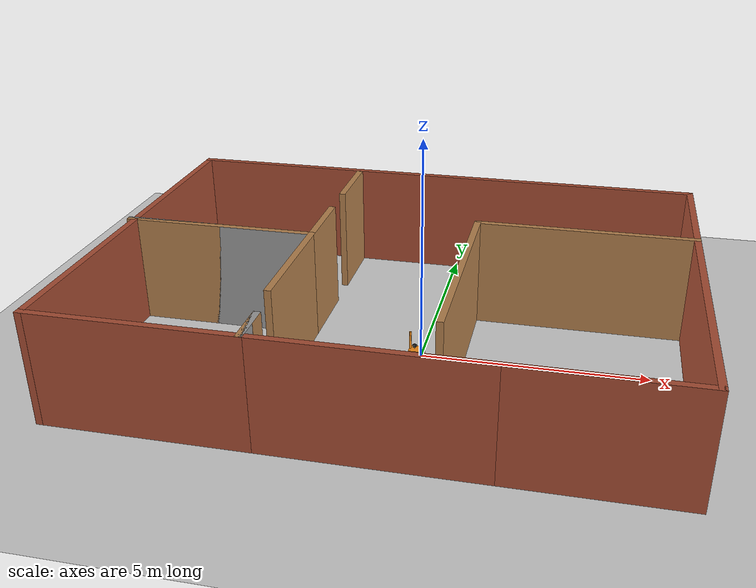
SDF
<sdf version="1.7">
 <world name="default">
  <light name="sun" type="directional">
   <pose>0 0 10 0 -0 0</pose>
   <diffuse>0.8 0.8 0.8 1</diffuse>
   <specular>0.2 0.2 0.2 1</specular>
   <attenuation>
    <range>1000</range>
    <constant>0.9</constant>
    <linear>0.01</linear>
    <quadratic>0.001</quadratic>
   </attenuation>
   <direction>-0.5 0.1 -0.9</direction>
   <spot><inner_angle>0</inner_angle><outer_angle>0</outer_angle><falloff>0</falloff></spot>
  </light>
  <model name="ground_plane">
   <static>1</static>
   <link name="link">
    <collision name="collision">
     <geometry><plane><normal>0 0 1</normal><size>100 100</size></plane></geometry>
     <surface><friction><ode><mu>100</mu><mu2>50</mu2></ode></friction></surface>
    </collision>
    <visual name="visual">
     <cast_shadows>0</cast_shadows>
     <geometry><plane><normal>0 0 1</normal><size>100 100</size></plane></geometry>
     <material>
      <script><uri>file://media/materials/scripts/gazebo.material</uri><name>Gazebo/Grey</name></script>
     </material>
    </visual>
   </link>
  </model>
  <gravity>0 0 -9.8</gravity>
  <magnetic_field>6e-06 2.3e-05 -4.2e-05</magnetic_field>
  <atmosphere type="adiabatic"/>
  <physics type="ode">
   <max_step_size>0.001</max_step_size>
   <real_time_factor>1</real_time_factor>
   <real_time_update_rate>1000</real_time_update_rate>
  </physics>
  <scene><ambient>0.4 0.4 0.4 1</ambient><background>0.7 0.7 0.7 1</background><shadows>1</shadows></scene>
  <spherical_coordinates>
   <surface_model>EARTH_WGS84</surface_model>
   <latitude_deg>0</latitude_deg>
   <longitude_deg>0</longitude_deg>
   <elevation>0</elevation>
   <heading_deg>0</heading_deg>
  </spherical_coordinates>
  <model name="my_bot">
   <link name="base_link">
    <inertial>
     <pose>-0.067475 0 0.081098 0 -0 0</pose>
     <mass>0.61</mass>
     <inertia>
      <ixx>0.00561003</ixx>
      <ixy>0</ixy>
      <ixz>0.000453811</ixz>
      <iyy>0.00760348</iyy>
      <iyz>0</iyz>
      <izz>0.00797093</izz>
     </inertia>
    </inertial>
    <collision name="base_link_fixed_joint_lump__chassis_collision">
     <pose>-0.0585 0 0.059 0 -0 0</pose>
     <geometry><box><size>0.335 0.265 0.138</size></box></geometry>
    </collision>
    <collision name="base_link_fixed_joint_lump__caster_wheel_collision_1">
     <pose>-0.151 0 -0.023 0 -0 0</pose>
     <geometry><sphere><radius>0.01</radius></sphere></geometry>
     <surface><friction><ode><mu>0.001</mu><mu2>0.001</mu2></ode></friction></surface>
    </collision>
    <collision name="base_link_fixed_joint_lump__laser_frame_collision_2">
     <pose>-0.104 0 0.202 0 -0 0</pose>
     <geometry><cylinder><length>0.04</length><radius>0.05</radius></cylinder></geometry>
    </collision>
    <collision name="base_link_fixed_joint_lump__rod_link_collision_3">
     <pose>-0.2 0 0.3 0 -0 0.523599</pose>
     <geometry><cylinder><length>0.5</length><radius>0.02</radius></cylinder></geometry>
    </collision>
    <visual name="base_link_fixed_joint_lump__chassis_visual">
     <pose>-0.0585 0 0.059 0 -0 0</pose>
     <geometry><box><size>0.335 0.265 0.138</size></box></geometry>
     <material>
      <script><name>Gazebo/Orange</name><uri>file://media/materials/scripts/gazebo.material</uri></script>
     </material>
    </visual>
    <visual name="base_link_fixed_joint_lump__camera_link_visual_1">
     <pose>0.05 0 0.171 0 -0 0</pose>
     <geometry><box><size>0.01 0.03 0.03</size></box></geometry>
     <material>
      <script><name>Gazebo/Black</name><uri>file://media/materials/scripts/gazebo.material</uri></script>
     </material>
    </visual>
    <visual name="base_link_fixed_joint_lump__camera_link_visual_2">
     <pose>0.05 0 0.121 0 -0 0</pose>
     <geometry><cylinder><length>0.1</length><radius>0.002</radius></cylinder></geometry>
     <material>
      <script><name>Gazebo/Black</name><uri>file://media/materials/scripts/gazebo.material</uri></script>
     </material>
    </visual>
    <visual name="base_link_fixed_joint_lump__caster_wheel_visual_3">
     <pose>-0.151 0 -0.023 0 -0 0</pose>
     <geometry><sphere><radius>0.01</radius></sphere></geometry>
     <material>
      <script><name>Gazebo/White</name><uri>file://media/materials/scripts/gazebo.material</uri></script>
     </material>
    </visual>
    <visual name="base_link_fixed_joint_lump__laser_frame_visual_4">
     <pose>-0.104 0 0.202 0 -0 0</pose>
     <geometry><cylinder><length>0.04</length><radius>0.05</radius></cylinder></geometry>
     <material>
      <script><name>Gazebo/Black</name><uri>file://media/materials/scripts/gazebo.material</uri></script>
     </material>
    </visual>
    <visual name="base_link_fixed_joint_lump__laser_frame_visual_5">
     <pose>-0.104 0 0.152 0 -0 0</pose>
     <geometry><cylinder><length>0.1</length><radius>0.01</radius></cylinder></geometry>
     <material>
      <script><name>Gazebo/Black</name><uri>file://media/materials/scripts/gazebo.material</uri></script>
     </material>
    </visual>
    <visual name="base_link_fixed_joint_lump__rod_link_visual_6">
     <pose>-0.2 0 0.3 0 -0 0.523599</pose>
     <geometry><cylinder><length>0.5</length><radius>0.02</radius></cylinder></geometry>
     <material>
      <script><name>Gazebo/orange</name><uri>file://media/materials/scripts/gazebo.material</uri></script>
     </material>
    </visual>
    <sensor name="camera" type="camera">
     <visualize>1</visualize>
     <update_rate>10</update_rate>
     <camera>
      <horizontal_fov>1.089</horizontal_fov>
      <image><format>R8G8B8</format><width>640</width><height>480</height></image>
      <clip><near>0.05</near><far>8</far></clip>
     </camera>
     <plugin name="camera_controller" filename="libgazebo_ros_camera.so">
      <frame_name>camera_link_optical</frame_name>
     </plugin>
     <pose>0.05 0 0.171 0 -0 0</pose>
    </sensor>
    <sensor name="laser" type="ray">
     <visualize>0</visualize>
     <update_rate>10</update_rate>
     <ray>
      <scan>
       <horizontal>
        <samples>360</samples>
        <min_angle>-3.14</min_angle>
        <max_angle>3.14</max_angle>
        <resolution>1</resolution>
       </horizontal>
       <vertical><samples>1</samples><min_angle>0</min_angle><max_angle>0</max_angle></vertical>
      </scan>
      <range><min>0.3</min><max>12</max></range>
     </ray>
     <plugin name="laser_controller" filename="libgazebo_ros_ray_sensor.so">
      <ros><argument>~/out:=scan</argument></ros>
      <output_type>sensor_msgs/LaserScan</output_type>
      <frame_name>laser_frame</frame_name>
     </plugin>
     <pose>-0.104 0 0.202 0 -0 0</pose>
    </sensor>
   </link>
   <joint name="left_wheel_joint" type="revolute">
    <pose relative_to="base_link">0 0.1485 0 -1.5708 0 0</pose>
    <parent>base_link</parent>
    <child>left_wheel</child>
    <axis>
     <xyz>0 0 1</xyz>
     <limit><lower>-1e+16</lower><upper>1e+16</upper></limit>
     <dynamics><spring_reference>0</spring_reference><spring_stiffness>0</spring_stiffness></dynamics>
    </axis>
   </joint>
   <link name="left_wheel">
    <pose relative_to="left_wheel_joint">0 0 0 0 -0 0</pose>
    <inertial>
     <mass>0.05</mass>
     <inertia>
      <ixx>1.64292e-05</ixx>
      <ixy>0</ixy>
      <ixz>0</ixz>
      <iyy>1.64292e-05</iyy>
      <iyz>0</iyz>
      <izz>2.7225e-05</izz>
     </inertia>
    </inertial>
    <collision name="left_wheel_collision">
     <geometry><sphere><radius>0.033</radius></sphere></geometry>
    </collision>
    <visual name="left_wheel_visual">
     <geometry><cylinder><length>0.026</length><radius>0.033</radius></cylinder></geometry>
     <material>
      <script><name>Gazebo/Blue</name><uri>file://media/materials/scripts/gazebo.material</uri></script>
     </material>
    </visual>
   </link>
   <joint name="right_wheel_joint" type="revolute">
    <pose relative_to="base_link">0 -0.1485 0 1.5708 -0 0</pose>
    <parent>base_link</parent>
    <child>right_wheel</child>
    <axis>
     <xyz>0 0 -1</xyz>
     <limit><lower>-1e+16</lower><upper>1e+16</upper></limit>
     <dynamics><spring_reference>0</spring_reference><spring_stiffness>0</spring_stiffness></dynamics>
    </axis>
   </joint>
   <link name="right_wheel">
    <pose relative_to="right_wheel_joint">0 0 0 0 -0 0</pose>
    <inertial>
     <mass>0.05</mass>
     <inertia>
      <ixx>1.64292e-05</ixx>
      <ixy>0</ixy>
      <ixz>0</ixz>
      <iyy>1.64292e-05</iyy>
      <iyz>0</iyz>
      <izz>2.7225e-05</izz>
     </inertia>
    </inertial>
    <collision name="right_wheel_collision">
     <geometry><sphere><radius>0.033</radius></sphere></geometry>
    </collision>
    <visual name="right_wheel_visual">
     <geometry><cylinder><length>0.026</length><radius>0.033</radius></cylinder></geometry>
     <material>
      <script><name>Gazebo/Blue</name><uri>file://media/materials/scripts/gazebo.material</uri></script>
     </material>
    </visual>
   </link>
   <plugin name="gazebo_ros2_control" filename="libgazebo_ros2_control.so">
    <parameters>/home/sreeja/dev_ws/install/my_bot/share/my_bot/config/my_controllers.yaml</parameters>
    <parameters>/home/sreeja/dev_ws/install/my_bot/share/my_bot/config/gaz_ros2_ctl_use_sim.yaml</parameters>
   </plugin>
   <frame name="base_footprint_joint" attached_to="base_link"/>
   <frame name="base_footprint" attached_to="base_footprint_joint"/>
   <frame name="camera_optical_joint" attached_to="camera_link"><pose>0 0 0 -1.5708 -0 -1.5708</pose></frame>
   <frame name="camera_link_optical" attached_to="camera_optical_joint"/>
   <frame name="camera_joint" attached_to="chassis"><pose>0.276 0 0.181 0 -0 0</pose></frame>
   <frame name="camera_link" attached_to="camera_joint"/>
   <frame name="caster_wheel_joint" attached_to="chassis"><pose>0.075 0 -0.013 0 -0 0</pose></frame>
   <frame name="caster_wheel" attached_to="caster_wheel_joint"/>
   <frame name="laser_joint" attached_to="chassis"><pose>0.122 0 0.212 0 -0 0</pose></frame>
   <frame name="laser_frame" attached_to="laser_joint"/>
   <frame name="chassis_joint" attached_to="base_link"><pose>-0.226 0 -0.01 0 -0 0</pose></frame>
   <frame name="chassis" attached_to="chassis_joint"/>
   <frame name="rod_joint" attached_to="base_link"><pose>-0.2 0 0.3 0 -0 0.523599</pose></frame>
   <frame name="rod_link" attached_to="rod_joint"/>
   <pose>-0.046398 4.7e-05 0.032997 -1.7e-05 1.8e-05 0.001454</pose>
  </model>
  <model name="Untitled">
   <pose>-0.606753 0.38 0 0 -0 0</pose>
   <link name="Wall_0">
    <collision name="Wall_0_Collision">
     <geometry><box><size>4.75 0.15 2.5</size></box></geometry>
     <pose>0 0 1.25 0 -0 0</pose>
    </collision>
    <visual name="Wall_0_Visual">
     <pose>0 0 1.25 0 -0 0</pose>
     <geometry><box><size>4.75 0.15 2.5</size></box></geometry>
     <material>
      <script><uri>file://media/materials/scripts/gazebo.material</uri><name>Gazebo/Bricks</name></script>
      <ambient>1 1 1 1</ambient>
     </material>
     <meta><layer>0</layer></meta>
    </visual>
    <pose>0.406753 -4.55 0 0 -0 3.14159</pose>
   </link>
   <link name="Wall_1">
    <collision name="Wall_1_Collision">
     <geometry><box><size>1 0.15 2.5</size></box></geometry>
     <pose>0 0 1.25 0 -0 0</pose>
    </collision>
    <visual name="Wall_1_Visual">
     <pose>0 0 1.25 0 -0 0</pose>
     <geometry><box><size>1 0.15 2.5</size></box></geometry>
     <material>
      <script><uri>file://media/materials/scripts/gazebo.material</uri><name>Gazebo/Grey</name></script>
      <ambient>1 1 1 1</ambient>
     </material>
     <meta><layer>0</layer></meta>
    </visual>
    <pose>-1.89325 -4.125 0 0 -0 1.5708</pose>
   </link>
   <link name="Wall_10">
    <collision name="Wall_10_Collision">
     <geometry><box><size>5 0.15 2.5</size></box></geometry>
     <pose>0 0 1.25 0 -0 0</pose>
    </collision>
    <visual name="Wall_10_Visual">
     <pose>0 0 1.25 0 -0 0</pose>
     <geometry><box><size>5 0.15 2.5</size></box></geometry>
     <material>
      <script><uri>file://media/materials/scripts/gazebo.material</uri><name>Gazebo/Wood</name></script>
      <ambient>1 1 1 1</ambient>
     </material>
     <meta><layer>0</layer></meta>
    </visual>
    <pose>3.93394 1.61631 0 0 -0 0</pose>
   </link>
   <link name="Wall_13">
    <collision name="Wall_13_Collision">
     <geometry><box><size>3 0.15 2.5</size></box></geometry>
     <pose>0 0 1.25 0 -0 0</pose>
    </collision>
    <visual name="Wall_13_Visual">
     <pose>0 0 1.25 0 -0 0</pose>
     <geometry><box><size>3 0.15 2.5</size></box></geometry>
     <material>
      <script><uri>file://media/materials/scripts/gazebo.material</uri><name>Gazebo/Wood</name></script>
      <ambient>1 1 1 1</ambient>
     </material>
     <meta><layer>0</layer></meta>
    </visual>
    <pose>-2.00894 -1.25807 0 0 -0 1.5708</pose>
   </link>
   <link name="Wall_14">
    <collision name="Wall_14_Collision">
     <geometry><box><size>4.5 0.15 2.5</size></box></geometry>
     <pose>0 0 1.25 0 -0 0</pose>
    </collision>
    <visual name="Wall_14_Visual">
     <pose>0 0 1.25 0 -0 0</pose>
     <geometry><box><size>4.5 0.15 2.5</size></box></geometry>
     <material>
      <script><uri>file://media/materials/scripts/gazebo.material</uri><name>Gazebo/Grey</name></script>
      <ambient>1 1 1 1</ambient>
     </material>
     <meta><layer>0</layer></meta>
    </visual>
    <pose>-4.18394 0.166931 0 0 -0 3.14159</pose>
   </link>
   <link name="Wall_15">
    <collision name="Wall_15_Collision">
     <geometry><box><size>4.5 0.15 2.5</size></box></geometry>
     <pose>0 0 1.25 0 -0 0</pose>
    </collision>
    <visual name="Wall_15_Visual">
     <pose>0 0 1.25 0 -0 0</pose>
     <geometry><box><size>4.5 0.15 2.5</size></box></geometry>
     <material>
      <script><uri>file://media/materials/scripts/gazebo.material</uri><name>Gazebo/Wood</name></script>
      <ambient>1 1 1 1</ambient>
     </material>
     <meta><layer>0</layer></meta>
    </visual>
    <pose>-4.18394 0.166931 0 0 -0 0</pose>
   </link>
   <link name="Wall_16">
    <collision name="Wall_16_Collision">
     <geometry><box><size>1.75 0.15 2.5</size></box></geometry>
     <pose>0 0 1.25 0 -0 0</pose>
    </collision>
    <visual name="Wall_16_Visual">
     <pose>0 0 1.25 0 -0 0</pose>
     <geometry><box><size>1.75 0.15 2.5</size></box></geometry>
     <material>
      <script><uri>file://media/materials/scripts/gazebo.material</uri><name>Gazebo/Wood</name></script>
      <ambient>1 1 1 1</ambient>
     </material>
     <meta><layer>0</layer></meta>
    </visual>
    <pose>-2.00894 0.966931 0 0 -0 1.5708</pose>
   </link>
   <link name="Wall_18">
    <collision name="Wall_18_Collision">
     <geometry><box><size>1.75 0.15 2.5</size></box></geometry>
     <pose>0 0 1.25 0 -0 0</pose>
    </collision>
    <visual name="Wall_18_Visual">
     <pose>0 0 1.25 0 -0 0</pose>
     <geometry><box><size>1.75 0.15 2.5</size></box></geometry>
     <material>
      <script><uri>file://media/materials/scripts/gazebo.material</uri><name>Gazebo/Wood</name></script>
      <ambient>1 1 1 1</ambient>
     </material>
     <meta><layer>0</layer></meta>
    </visual>
    <pose>-2.00894 3.59258 0 0 -0 1.5708</pose>
   </link>
   <link name="Wall_2">
    <collision name="Wall_2_Collision">
     <geometry><box><size>1 0.15 2.5</size></box></geometry>
     <pose>0 0 1.25 0 -0 0</pose>
    </collision>
    <visual name="Wall_2_Visual">
     <pose>0 0 1.25 0 -0 0</pose>
     <geometry><box><size>1 0.15 2.5</size></box></geometry>
     <material>
      <script><uri>file://media/materials/scripts/gazebo.material</uri><name>Gazebo/Wood</name></script>
      <ambient>1 1 1 1</ambient>
     </material>
     <meta><layer>0</layer></meta>
    </visual>
    <pose>-1.89325 -4.125 0 0 -0 -1.5708</pose>
   </link>
   <link name="Wall_3">
    <collision name="Wall_3_Collision">
     <geometry><box><size>4.5 0.15 2.5</size></box></geometry>
     <pose>0 0 1.25 0 -0 0</pose>
    </collision>
    <visual name="Wall_3_Visual">
     <pose>0 0 1.25 0 -0 0</pose>
     <geometry><box><size>4.5 0.15 2.5</size></box></geometry>
     <material>
      <script><uri>file://media/materials/scripts/gazebo.material</uri><name>Gazebo/Bricks</name></script>
      <ambient>1 1 1 1</ambient>
     </material>
     <meta><layer>0</layer></meta>
    </visual>
    <pose>-4.06825 -4.55 0 0 -0 3.14159</pose>
   </link>
   <link name="Wall_4">
    <collision name="Wall_4_Collision">
     <geometry><box><size>9.25 0.15 2.5</size></box></geometry>
     <pose>0 0 1.25 0 -0 0</pose>
    </collision>
    <visual name="Wall_4_Visual">
     <pose>0 0 1.25 0 -0 0</pose>
     <geometry><box><size>9.25 0.15 2.5</size></box></geometry>
     <material>
      <script><uri>file://media/materials/scripts/gazebo.material</uri><name>Gazebo/Bricks</name></script>
      <ambient>1 1 1 1</ambient>
     </material>
     <meta><layer>0</layer></meta>
    </visual>
    <pose>-6.24325 -0 0 0 -0 1.5708</pose>
   </link>
   <link name="Wall_5">
    <collision name="Wall_5_Collision">
     <geometry><box><size>12.75 0.15 2.5</size></box></geometry>
     <pose>0 0 1.25 0 -0 0</pose>
    </collision>
    <visual name="Wall_5_Visual">
     <pose>0 0 1.25 0 -0 0</pose>
     <geometry><box><size>12.75 0.15 2.5</size></box></geometry>
     <material>
      <script><uri>file://media/materials/scripts/gazebo.material</uri><name>Gazebo/Bricks</name></script>
      <ambient>1 1 1 1</ambient>
     </material>
     <meta><layer>0</layer></meta>
    </visual>
    <pose>0.056753 4.55 0 0 -0 0</pose>
   </link>
   <link name="Wall_6">
    <collision name="Wall_6_Collision">
     <geometry><box><size>9.25 0.15 2.5</size></box></geometry>
     <pose>0 0 1.25 0 -0 0</pose>
    </collision>
    <visual name="Wall_6_Visual">
     <pose>0 0 1.25 0 -0 0</pose>
     <geometry><box><size>9.25 0.15 2.5</size></box></geometry>
     <material>
      <script><uri>file://media/materials/scripts/gazebo.material</uri><name>Gazebo/Bricks</name></script>
      <ambient>1 1 1 1</ambient>
     </material>
     <meta><layer>0</layer></meta>
    </visual>
    <pose>6.35675 -0 0 0 -0 -1.5708</pose>
   </link>
   <link name="Wall_7">
    <collision name="Wall_7_Collision">
     <geometry><box><size>4 0.15 2.5</size></box></geometry>
     <pose>0 0 1.25 0 -0 0</pose>
    </collision>
    <visual name="Wall_7_Visual">
     <pose>0 0 1.25 0 -0 0</pose>
     <geometry><box><size>4 0.15 2.5</size></box></geometry>
     <material>
      <script><uri>file://media/materials/scripts/gazebo.material</uri><name>Gazebo/Bricks</name></script>
      <ambient>1 1 1 1</ambient>
     </material>
     <meta><layer>0</layer></meta>
    </visual>
    <pose>4.43175 -4.55 0 0 -0 3.14159</pose>
   </link>
   <link name="Wall_9">
    <collision name="Wall_9_Collision">
     <geometry><box><size>5 0.15 2.5</size></box></geometry>
     <pose>0 0 1.25 0 -0 0</pose>
    </collision>
    <visual name="Wall_9_Visual">
     <pose>0 0 1.25 0 -0 0</pose>
     <geometry><box><size>5 0.15 2.5</size></box></geometry>
     <material>
      <script><uri>file://media/materials/scripts/gazebo.material</uri><name>Gazebo/Wood</name></script>
      <ambient>1 1 1 1</ambient>
     </material>
     <meta><layer>0</layer></meta>
    </visual>
    <pose>1.50894 -0.808693 0 0 -0 1.5708</pose>
   </link>
   <static>1</static>
  </model>
 </world>
</sdf>
